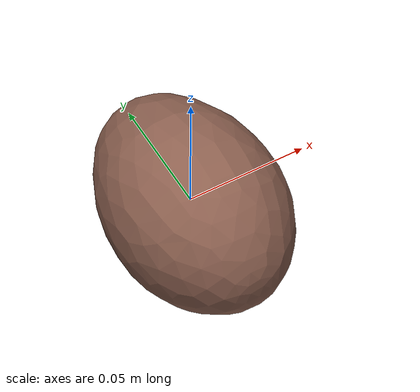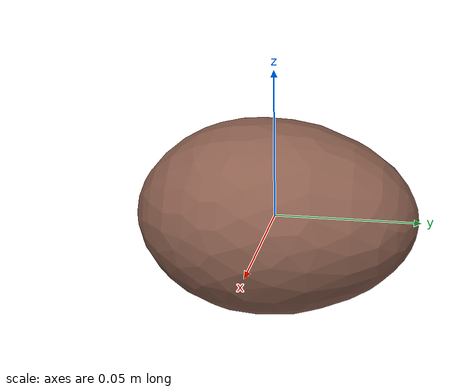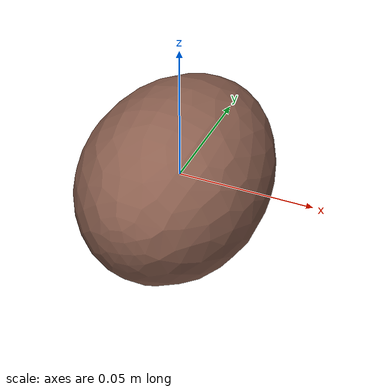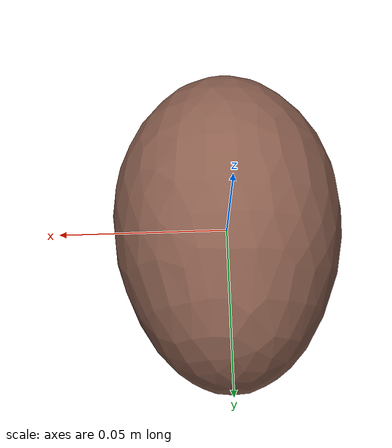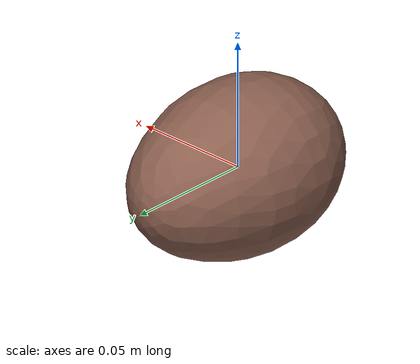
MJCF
<mujoco model="Egg_16">
  <compiler autolimits="true" boundmass="0.01" angle="radian"/>
  <default>
    <default class="/">
      <default class="__VISUAL_MJT__">
        <geom contype="0" conaffinity="0" group="0"/>
      </default>
      <default class="__STRUCTURAL_MJT__">
        <geom contype="8" conaffinity="15" group="4" friction="0.90000000000000002 0.90000000000000002 0.001" solref="0.025000000000000001 1" solimp="0.998 0.998 0.001"/>
      </default>
      <default class="__DYNAMIC_MJT__">
        <geom contype="1" conaffinity="15" group="4" friction="0.90000000000000002 0.90000000000000002 0.001" solref="0.025000000000000001 1" solimp="0.998 0.998 0.001"/>
      </default>
    </default>
  </default>
  <asset>
    <material name="material_Egg4_Mat" class="/" specular="0.5" shininess="0.5" rgba="0.53676469999999998 0.36726049999999999 0.3039036 1"/>
    <mesh name="Egg_16_egg_16" class="/" file="Egg_16_egg_16/Egg_16_egg_16.obj" scale="1 1 1"/>
  </asset>
  <worldbody>
    <body name="Egg_16">
      <joint name="Egg_16_free" class="/" type="free" pos="0 0 0" axis="0 0 1" stiffness="0" range="0 0" armature="0" damping="0.10000000000000001" frictionloss="0"/>
      <body name="Egg_16_egg_16" pos="-0.00019000000000000001 0 -0.00012999999999999999" quat="1 0 0 0">
        <geom name="Egg_16_egg_16" class="__VISUAL_MJT__" type="mesh" material="material_Egg4_Mat" shellinertia="true" mesh="Egg_16_egg_16"/>
        <geom name="Egg_16_PrimitiveCollider_0" class="__DYNAMIC_MJT__" type="capsule" size="0.032112009823322296 0.015615116804838181" rgba="0 1 0 1" pos="-0 0 0" quat="0.70710678118654757 0.70710678118654746 0 0"/>
      </body>
    </body>
  </worldbody>
</mujoco>
